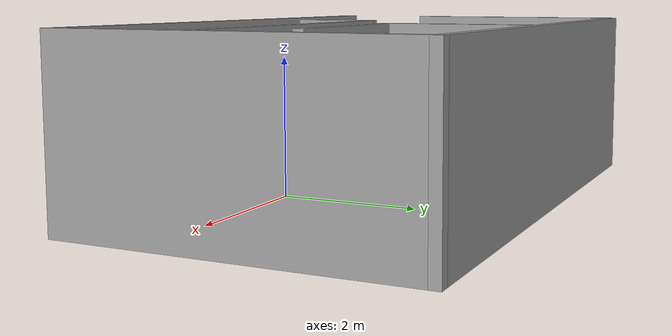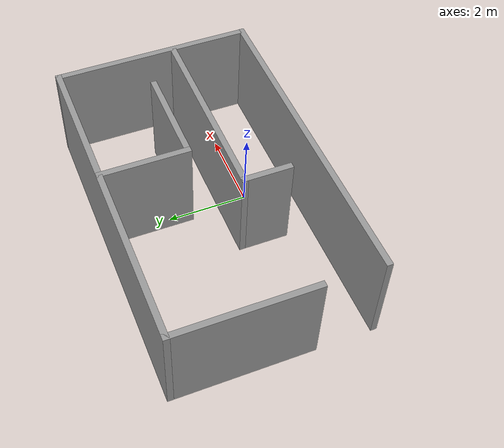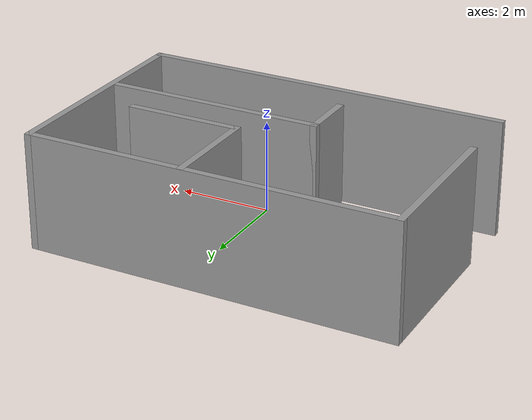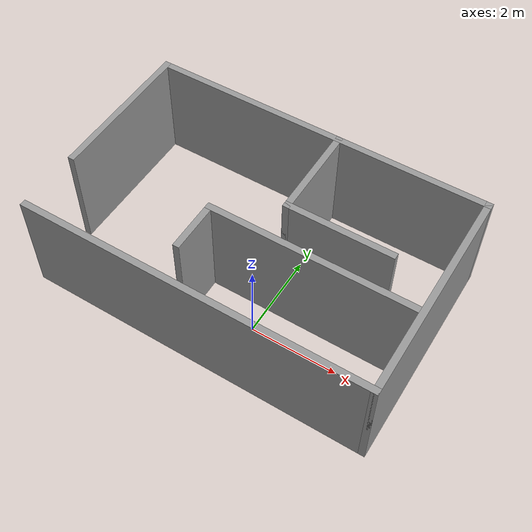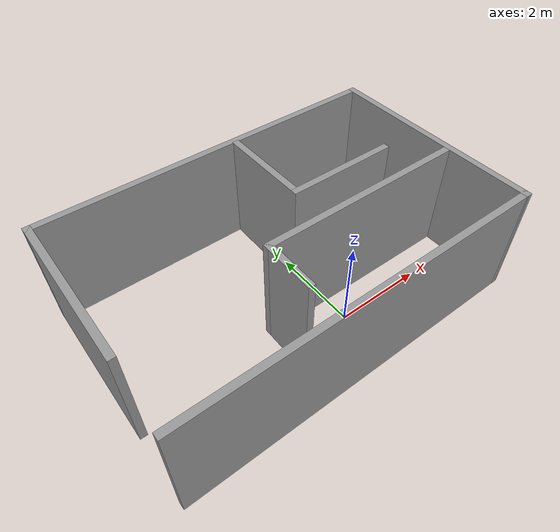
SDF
<?xml version='1.0'?>
<sdf version='1.7'>
  <model name='room'>
    <pose>-0.645 1.205 0 0 -0 0</pose>
    <link name='Wall_0'>
      <collision name='Wall_0_Collision'>
        <geometry>
          <box>
            <size>8 0.15 2.5</size>
          </box>
        </geometry>
        <pose>0 0 1.25 0 -0 0</pose>
      </collision>
      <visual name='Wall_0_Visual'>
        <pose>0 0 1.25 0 -0 0</pose>
        <geometry>
          <box>
            <size>8 0.15 2.5</size>
          </box>
        </geometry>
        <material>
          <script>
            <uri>file://media/materials/scripts/gazebo.material</uri>
            <name>Gazebo/Grey</name>
          </script>
          <ambient>1 1 1 1</ambient>
        </material>
        <meta>
          <layer>0</layer>
        </meta>
      </visual>
      <pose>0 -2.425 0 0 -0 0</pose>
    </link>
    <link name='Wall_1'>
      <collision name='Wall_1_Collision'>
        <geometry>
          <box>
            <size>5 0.15 2.5</size>
          </box>
        </geometry>
        <pose>0 0 1.25 0 -0 0</pose>
      </collision>
      <visual name='Wall_1_Visual'>
        <pose>0 0 1.25 0 -0 0</pose>
        <geometry>
          <box>
            <size>5 0.15 2.5</size>
          </box>
        </geometry>
        <material>
          <script>
            <uri>file://media/materials/scripts/gazebo.material</uri>
            <name>Gazebo/Grey</name>
          </script>
          <ambient>1 1 1 1</ambient>
        </material>
        <meta>
          <layer>0</layer>
        </meta>
      </visual>
      <pose>3.925 -0 0 0 -0 1.5708</pose>
    </link>
    <link name='Wall_10'>
      <collision name='Wall_10_Collision'>
        <geometry>
          <box>
            <size>1.25 0.15 2.5</size>
          </box>
        </geometry>
        <pose>0 0 1.25 0 -0 0</pose>
      </collision>
      <visual name='Wall_10_Visual'>
        <pose>0 0 1.25 0 -0 0</pose>
        <geometry>
          <box>
            <size>1.25 0.15 2.5</size>
          </box>
        </geometry>
        <material>
          <script>
            <uri>file://media/materials/scripts/gazebo.material</uri>
            <name>Gazebo/Grey</name>
          </script>
          <ambient>1 1 1 1</ambient>
        </material>
        <meta>
          <layer>0</layer>
        </meta>
      </visual>
      <pose>-0.773 -1.0875 0 0 -0 -1.5708</pose>
    </link>
    <link name='Wall_2'>
      <collision name='Wall_2_Collision'>
        <geometry>
          <box>
            <size>8 0.15 2.5</size>
          </box>
        </geometry>
        <pose>0 0 1.25 0 -0 0</pose>
      </collision>
      <visual name='Wall_2_Visual'>
        <pose>0 0 1.25 0 -0 0</pose>
        <geometry>
          <box>
            <size>8 0.15 2.5</size>
          </box>
        </geometry>
        <material>
          <script>
            <uri>file://media/materials/scripts/gazebo.material</uri>
            <name>Gazebo/Grey</name>
          </script>
          <ambient>1 1 1 1</ambient>
        </material>
        <meta>
          <layer>0</layer>
        </meta>
      </visual>
      <pose>0 2.425 0 0 -0 3.14159</pose>
    </link>
    <link name='Wall_3'>
      <collision name='Wall_3_Collision'>
        <geometry>
          <box>
            <size>3.5 0.15 2.5</size>
          </box>
        </geometry>
        <pose>0 0 1.25 0 -0 0</pose>
      </collision>
      <visual name='Wall_3_Visual'>
        <pose>0 0 1.25 0 -0 0</pose>
        <geometry>
          <box>
            <size>3.5 0.15 2.5</size>
          </box>
        </geometry>
        <material>
          <script>
            <uri>file://media/materials/scripts/gazebo.material</uri>
            <name>Gazebo/Grey</name>
          </script>
          <ambient>1 1 1 1</ambient>
        </material>
        <meta>
          <layer>0</layer>
        </meta>
      </visual>
      <pose>-3.925 0.75 0 0 -0 -1.5708</pose>
    </link>
    <link name='Wall_5'>
      <collision name='Wall_5_Collision'>
        <geometry>
          <box>
            <size>2.25 0.15 2.5</size>
          </box>
        </geometry>
        <pose>0 0 1.25 0 -0 0</pose>
      </collision>
      <visual name='Wall_5_Visual'>
        <pose>0 0 1.25 0 -0 0</pose>
        <geometry>
          <box>
            <size>2.25 0.15 2.5</size>
          </box>
        </geometry>
        <material>
          <script>
            <uri>file://media/materials/scripts/gazebo.material</uri>
            <name>Gazebo/Grey</name>
          </script>
          <ambient>1 1 1 1</ambient>
        </material>
        <meta>
          <layer>0</layer>
        </meta>
      </visual>
      <pose>0.515 1.368 0 0 -0 -1.5708</pose>
    </link>
    <link name='Wall_6'>
      <collision name='Wall_6_Collision'>
        <geometry>
          <box>
            <size>2.5 0.15 2.5</size>
          </box>
        </geometry>
        <pose>0 0 1.25 0 -0 0</pose>
      </collision>
      <visual name='Wall_6_Visual'>
        <pose>0 0 1.25 0 -0 0</pose>
        <geometry>
          <box>
            <size>2.5 0.15 2.5</size>
          </box>
        </geometry>
        <material>
          <script>
            <uri>file://media/materials/scripts/gazebo.material</uri>
            <name>Gazebo/Grey</name>
          </script>
          <ambient>1 1 1 1</ambient>
        </material>
        <meta>
          <layer>0</layer>
        </meta>
      </visual>
      <pose>1.69 0.318 0 0 -0 0</pose>
    </link>
    <link name='Wall_8'>
      <collision name='Wall_8_Collision'>
        <geometry>
          <box>
            <size>4.75 0.15 2.5</size>
          </box>
        </geometry>
        <pose>0 0 1.25 0 -0 0</pose>
      </collision>
      <visual name='Wall_8_Visual'>
        <pose>0 0 1.25 0 -0 0</pose>
        <geometry>
          <box>
            <size>4.75 0.15 2.5</size>
          </box>
        </geometry>
        <material>
          <script>
            <uri>file://media/materials/scripts/gazebo.material</uri>
            <name>Gazebo/Grey</name>
          </script>
          <ambient>1 1 1 1</ambient>
        </material>
        <meta>
          <layer>0</layer>
        </meta>
      </visual>
      <pose>1.527 -0.5375 0 0 -0 0</pose>
    </link>
    <static>1</static>
  </model>
</sdf>
